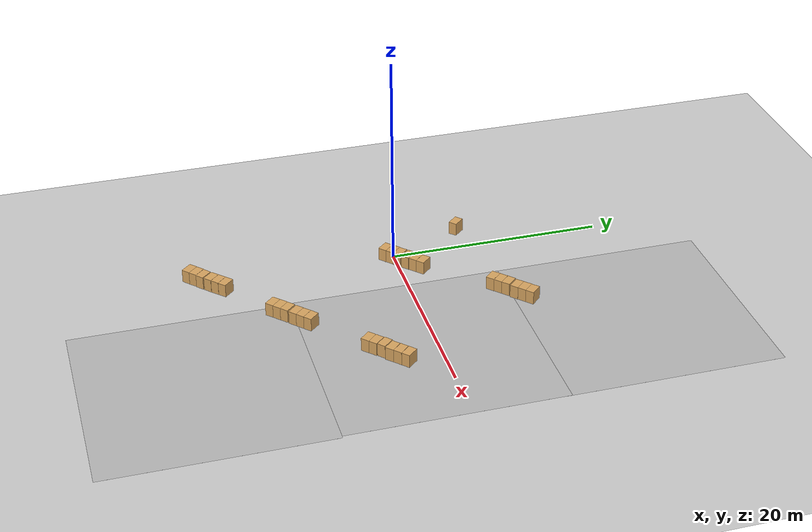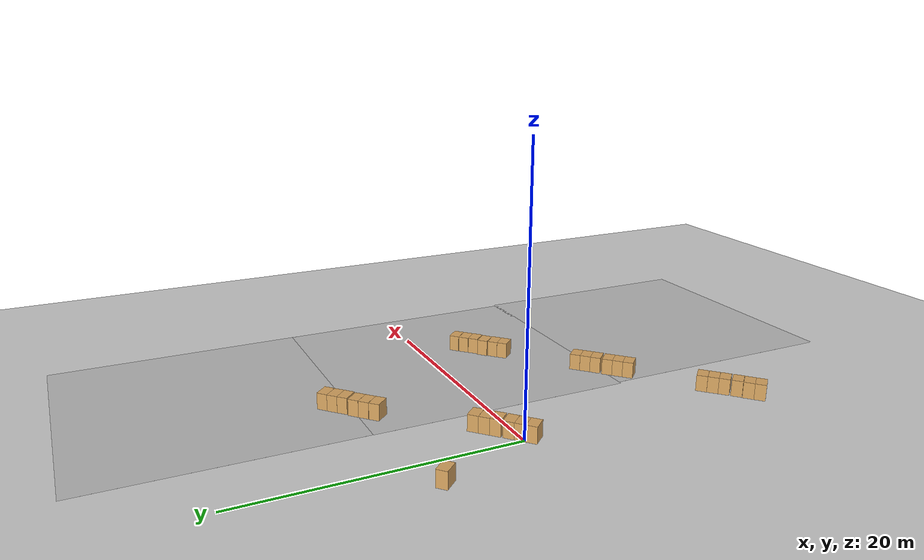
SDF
<sdf version="1.6">
 <world name="default">
  <model name="ground_plane">
   <static>1</static>
   <link name="link">
    <collision name="collision">
     <geometry><plane><normal>0 0 1</normal><size>100 100</size></plane></geometry>
     <surface><friction><ode><mu>100</mu><mu2>50</mu2></ode></friction></surface>
    </collision>
    <visual name="visual">
     <cast_shadows>0</cast_shadows>
     <geometry><plane><normal>0 0 1</normal><size>100 100</size></plane></geometry>
     <material>
      <script><uri>file://media/materials/scripts/gazebo.material</uri><name>Gazebo/Grey</name></script>
     </material>
    </visual>
   </link>
  </model>
  <model name="Floor_room_0_clone">
   <link name="main">
    <pose>0 0 0.01 0 -0 0</pose>
    <collision name="main_Collision"><geometry><box><size>20 20 0.001</size></box></geometry></collision>
    <visual name="main_Visual">
     <geometry><box><size>20 20 0.001</size></box></geometry>
     <material>
      <script>
       <uri>model://Floor_room/materials/scripts</uri>
       <uri>model://Floor_room/materials/textures</uri>
       <name>floor_room</name>
      </script>
     </material>
    </visual>
   </link>
   <static>1</static>
   <pose>15.2569 -21.1005 0 0 -0 0</pose>
  </model>
  <model name="Floor_room_0_clone_0">
   <link name="main">
    <pose>0 0 0.01 0 -0 0</pose>
    <collision name="main_Collision"><geometry><box><size>20 20 0.001</size></box></geometry></collision>
    <visual name="main_Visual">
     <geometry><box><size>20 20 0.001</size></box></geometry>
     <material>
      <script>
       <uri>model://Floor_room/materials/scripts</uri>
       <uri>model://Floor_room/materials/textures</uri>
       <name>floor_room</name>
      </script>
     </material>
    </visual>
   </link>
   <static>1</static>
   <pose>15.0288 -1.3267 0 0 -0 0</pose>
  </model>
  <model name="Floor_room_0_clone_1">
   <link name="main">
    <pose>0 0 0.01 0 -0 0</pose>
    <collision name="main_Collision"><geometry><box><size>20 20 0.001</size></box></geometry></collision>
    <visual name="main_Visual">
     <geometry><box><size>20 20 0.001</size></box></geometry>
     <material>
      <script>
       <uri>model://Floor_room/materials/scripts</uri>
       <uri>model://Floor_room/materials/textures</uri>
       <name>floor_room</name>
      </script>
     </material>
    </visual>
   </link>
   <static>1</static>
   <pose>15.0504 18.1386 0 0 -0 0</pose>
  </model>
  <model name="Big box 4_clone_1_clone_clone_3_clone_clone_1">
   <pose>9.15129 -9.98772 0.63539 -0.000981 -0.000832 -0.826064</pose>
   <static>0</static>
   <link name="link">
    <inertial>
     <mass>40</mass>
     <inertia><ixx>1</ixx><ixy>0</ixy><ixz>0</ixz><iyy>1</iyy><iyz>0</iyz><izz>1</izz></inertia>
    </inertial>
    <collision name="collision">
     <geometry><box><size>1.2 0.8 1.25</size></box></geometry>
     <surface><contact><ode><max_vel>0.1</max_vel><min_depth>0.001</min_depth></ode></contact></surface>
    </collision>
    <visual name="visual">
     <geometry><box><size>1.20 0.80 1.25</size></box></geometry>
     <material>
      <ambient>0.72 0.55 0.32 1</ambient>
      <diffuse>0.85 0.65 0.38 1</diffuse>
      <specular>0.1 0.1 0.1 1</specular>
     </material>
    </visual>
   </link>
  </model>
  <model name="Big box 4_clone_1_clone_clone_3_clone_clone_1_clone">
   <pose>7.25854 -11.6862 0.635464 -2.7e-05 -1.5e-05 -0.815496</pose>
   <static>0</static>
   <link name="link">
    <inertial>
     <mass>40</mass>
     <inertia><ixx>1</ixx><ixy>0</ixy><ixz>0</ixz><iyy>1</iyy><iyz>0</iyz><izz>1</izz></inertia>
    </inertial>
    <collision name="collision">
     <geometry><box><size>1.2 0.8 1.25</size></box></geometry>
     <surface><contact><ode><max_vel>0.1</max_vel><min_depth>0.001</min_depth></ode></contact></surface>
    </collision>
    <visual name="visual">
     <geometry><box><size>1.20 0.80 1.25</size></box></geometry>
     <material>
      <ambient>0.72 0.55 0.32 1</ambient>
      <diffuse>0.85 0.65 0.38 1</diffuse>
      <specular>0.1 0.1 0.1 1</specular>
     </material>
    </visual>
   </link>
  </model>
  <model name="Big box 4_clone_1_clone_clone_3_clone_clone_1_clone_0">
   <pose>6.67276 -12.2304 0.635223 0.000765 -5.1e-05 -0.815316</pose>
   <static>0</static>
   <link name="link">
    <inertial>
     <mass>40</mass>
     <inertia><ixx>1</ixx><ixy>0</ixy><ixz>0</ixz><iyy>1</iyy><iyz>0</iyz><izz>1</izz></inertia>
    </inertial>
    <collision name="collision">
     <geometry><box><size>1.2 0.8 1.25</size></box></geometry>
     <surface><contact><ode><max_vel>0.1</max_vel><min_depth>0.001</min_depth></ode></contact></surface>
    </collision>
    <visual name="visual">
     <geometry><box><size>1.20 0.80 1.25</size></box></geometry>
     <material>
      <ambient>0.72 0.55 0.32 1</ambient>
      <diffuse>0.85 0.65 0.38 1</diffuse>
      <specular>0.1 0.1 0.1 1</specular>
     </material>
    </visual>
   </link>
  </model>
  <model name="Big box 4_clone_1_clone_clone_3_clone_clone_1_clone_0_clone">
   <pose>6.08846 -12.7777 0.63538 -0.00014 -0.000237 -0.815193</pose>
   <static>0</static>
   <link name="link">
    <inertial>
     <mass>40</mass>
     <inertia><ixx>1</ixx><ixy>0</ixy><ixz>0</ixz><iyy>1</iyy><iyz>0</iyz><izz>1</izz></inertia>
    </inertial>
    <collision name="collision">
     <geometry><box><size>1.2 0.8 1.25</size></box></geometry>
     <surface><contact><ode><max_vel>0.1</max_vel><min_depth>0.001</min_depth></ode></contact></surface>
    </collision>
    <visual name="visual">
     <geometry><box><size>1.20 0.80 1.25</size></box></geometry>
     <material>
      <ambient>0.72 0.55 0.32 1</ambient>
      <diffuse>0.85 0.65 0.38 1</diffuse>
      <specular>0.1 0.1 0.1 1</specular>
     </material>
    </visual>
   </link>
  </model>
  <model name="Big box 4_clone_1_clone_clone_3_clone_clone_1_clone_0_clone_1">
   <pose>8.56172 -10.531 0.635082 -0.000196 -0.000827 -0.822312</pose>
   <static>0</static>
   <link name="link">
    <inertial>
     <mass>40</mass>
     <inertia><ixx>1</ixx><ixy>0</ixy><ixz>0</ixz><iyy>1</iyy><iyz>0</iyz><izz>1</izz></inertia>
    </inertial>
    <collision name="collision">
     <geometry><box><size>1.2 0.8 1.25</size></box></geometry>
     <surface><contact><ode><max_vel>0.1</max_vel><min_depth>0.001</min_depth></ode></contact></surface>
    </collision>
    <visual name="visual">
     <geometry><box><size>1.20 0.80 1.25</size></box></geometry>
     <material>
      <ambient>0.72 0.55 0.32 1</ambient>
      <diffuse>0.85 0.65 0.38 1</diffuse>
      <specular>0.1 0.1 0.1 1</specular>
     </material>
    </visual>
   </link>
  </model>
  <model name="Big box 4_clone_1_clone_clone_3_clone_clone_1_clone_0_clone_0">
   <pose>7.97165 -11.0705 0.635079 -0.000198 -0.000834 -0.823147</pose>
   <static>0</static>
   <link name="link">
    <inertial>
     <mass>40</mass>
     <inertia><ixx>1</ixx><ixy>0</ixy><ixz>0</ixz><iyy>1</iyy><iyz>0</iyz><izz>1</izz></inertia>
    </inertial>
    <collision name="collision">
     <geometry><box><size>1.2 0.8 1.25</size></box></geometry>
     <surface><contact><ode><max_vel>0.1</max_vel><min_depth>0.001</min_depth></ode></contact></surface>
    </collision>
    <visual name="visual">
     <geometry><box><size>1.20 0.80 1.25</size></box></geometry>
     <material>
      <ambient>0.72 0.55 0.32 1</ambient>
      <diffuse>0.85 0.65 0.38 1</diffuse>
      <specular>0.1 0.1 0.1 1</specular>
     </material>
    </visual>
   </link>
  </model>
  <model name="Big box 4_clone_1_clone_clone_3_clone_clone_1_clone_0_clone_clone_3_clone_6">
   <pose>0.520862 -17.3367 0.635477 0.000446 0.000301 -0.825937</pose>
   <static>0</static>
   <link name="link">
    <inertial>
     <mass>40</mass>
     <inertia><ixx>1</ixx><ixy>0</ixy><ixz>0</ixz><iyy>1</iyy><iyz>0</iyz><izz>1</izz></inertia>
    </inertial>
    <collision name="collision">
     <geometry><box><size>1.2 0.8 1.25</size></box></geometry>
     <surface><contact><ode><max_vel>0.1</max_vel><min_depth>0.001</min_depth></ode></contact></surface>
    </collision>
    <visual name="visual">
     <geometry><box><size>1.20 0.80 1.25</size></box></geometry>
     <material>
      <ambient>0.72 0.55 0.32 1</ambient>
      <diffuse>0.85 0.65 0.38 1</diffuse>
      <specular>0.1 0.1 0.1 1</specular>
     </material>
    </visual>
   </link>
  </model>
  <model name="Big box 4_clone_1_clone_clone_3_clone_clone_1_clone_0_clone_clone_3_clone_8">
   <pose>1.10652 -16.7834 0.634985 7e-06 -0.000805 -0.816273</pose>
   <static>0</static>
   <link name="link">
    <inertial>
     <mass>40</mass>
     <inertia><ixx>1</ixx><ixy>0</ixy><ixz>0</ixz><iyy>1</iyy><iyz>0</iyz><izz>1</izz></inertia>
    </inertial>
    <collision name="collision">
     <geometry><box><size>1.2 0.8 1.25</size></box></geometry>
     <surface><contact><ode><max_vel>0.1</max_vel><min_depth>0.001</min_depth></ode></contact></surface>
    </collision>
    <visual name="visual">
     <geometry><box><size>1.20 0.80 1.25</size></box></geometry>
     <material>
      <ambient>0.72 0.55 0.32 1</ambient>
      <diffuse>0.85 0.65 0.38 1</diffuse>
      <specular>0.1 0.1 0.1 1</specular>
     </material>
    </visual>
   </link>
  </model>
  <model name="Big box 4_clone_1_clone_clone_3_clone_clone_1_clone_0_clone_clone_3_clone_7">
   <pose>1.69106 -16.2278 0.634995 1.7e-05 -0.000815 -0.815976</pose>
   <static>0</static>
   <link name="link">
    <inertial>
     <mass>40</mass>
     <inertia><ixx>1</ixx><ixy>0</ixy><ixz>0</ixz><iyy>1</iyy><iyz>0</iyz><izz>1</izz></inertia>
    </inertial>
    <collision name="collision">
     <geometry><box><size>1.2 0.8 1.25</size></box></geometry>
     <surface><contact><ode><max_vel>0.1</max_vel><min_depth>0.001</min_depth></ode></contact></surface>
    </collision>
    <visual name="visual">
     <geometry><box><size>1.20 0.80 1.25</size></box></geometry>
     <material>
      <ambient>0.72 0.55 0.32 1</ambient>
      <diffuse>0.85 0.65 0.38 1</diffuse>
      <specular>0.1 0.1 0.1 1</specular>
     </material>
    </visual>
   </link>
  </model>
  <model name="Big box 4_clone_1_clone_clone_3_clone_clone_1_clone_0_clone_clone_3_clone_6_clone">
   <pose>-1.36441 -19.0103 0.635259 -0.000725 -0.000781 -0.820196</pose>
   <static>0</static>
   <link name="link">
    <inertial>
     <mass>40</mass>
     <inertia><ixx>1</ixx><ixy>0</ixy><ixz>0</ixz><iyy>1</iyy><iyz>0</iyz><izz>1</izz></inertia>
    </inertial>
    <collision name="collision">
     <geometry><box><size>1.2 0.8 1.25</size></box></geometry>
     <surface><contact><ode><max_vel>0.1</max_vel><min_depth>0.001</min_depth></ode></contact></surface>
    </collision>
    <visual name="visual">
     <geometry><box><size>1.20 0.80 1.25</size></box></geometry>
     <material>
      <ambient>0.72 0.55 0.32 1</ambient>
      <diffuse>0.85 0.65 0.38 1</diffuse>
      <specular>0.1 0.1 0.1 1</specular>
     </material>
    </visual>
   </link>
  </model>
  <model name="Big box 4_clone_1_clone_clone_3_clone_clone_1_clone_0_clone_clone_3_clone_6_clone_0">
   <pose>-0.138119 -17.9496 0.635002 9e-06 -0.000825 -0.823667</pose>
   <static>0</static>
   <link name="link">
    <inertial>
     <mass>40</mass>
     <inertia><ixx>1</ixx><ixy>0</ixy><ixz>0</ixz><iyy>1</iyy><iyz>0</iyz><izz>1</izz></inertia>
    </inertial>
    <collision name="collision">
     <geometry><box><size>1.2 0.8 1.25</size></box></geometry>
     <surface><contact><ode><max_vel>0.1</max_vel><min_depth>0.001</min_depth></ode></contact></surface>
    </collision>
    <visual name="visual">
     <geometry><box><size>1.20 0.80 1.25</size></box></geometry>
     <material>
      <ambient>0.72 0.55 0.32 1</ambient>
      <diffuse>0.85 0.65 0.38 1</diffuse>
      <specular>0.1 0.1 0.1 1</specular>
     </material>
    </visual>
   </link>
  </model>
  <model name="Big box 4_clone_1_clone_clone_3_clone_clone_1_clone_0_clone_clone_3_clone_6_clone_1">
   <pose>-0.768553 -18.4756 0.634986 7e-06 -0.000808 -0.821489</pose>
   <static>0</static>
   <link name="link">
    <inertial>
     <mass>40</mass>
     <inertia><ixx>1</ixx><ixy>0</ixy><ixz>0</ixz><iyy>1</iyy><iyz>0</iyz><izz>1</izz></inertia>
    </inertial>
    <collision name="collision">
     <geometry><box><size>1.2 0.8 1.25</size></box></geometry>
     <surface><contact><ode><max_vel>0.1</max_vel><min_depth>0.001</min_depth></ode></contact></surface>
    </collision>
    <visual name="visual">
     <geometry><box><size>1.20 0.80 1.25</size></box></geometry>
     <material>
      <ambient>0.72 0.55 0.32 1</ambient>
      <diffuse>0.85 0.65 0.38 1</diffuse>
      <specular>0.1 0.1 0.1 1</specular>
     </material>
    </visual>
   </link>
  </model>
  <model name="Big box 4_clone_1_clone_clone_3_clone_clone_1_clone_0_clone_0_clone">
   <pose>13.7473 -5.95119 0.635493 -9.3e-05 -7.2e-05 -0.819926</pose>
   <static>0</static>
   <link name="link">
    <inertial>
     <mass>40</mass>
     <inertia><ixx>1</ixx><ixy>0</ixy><ixz>0</ixz><iyy>1</iyy><iyz>0</iyz><izz>1</izz></inertia>
    </inertial>
    <collision name="collision">
     <geometry><box><size>1.2 0.8 1.25</size></box></geometry>
     <surface><contact><ode><max_vel>0.1</max_vel><min_depth>0.001</min_depth></ode></contact></surface>
    </collision>
    <visual name="visual">
     <geometry><box><size>1.20 0.80 1.25</size></box></geometry>
     <material>
      <ambient>0.72 0.55 0.32 1</ambient>
      <diffuse>0.85 0.65 0.38 1</diffuse>
      <specular>0.1 0.1 0.1 1</specular>
     </material>
    </visual>
   </link>
  </model>
  <model name="Big box 4_clone_1_clone_clone_3_clone_clone_1_clone_0_clone_0_clone_0">
   <pose>14.3278 -5.4008 0.635115 -0.000299 -0.000827 -0.819794</pose>
   <static>0</static>
   <link name="link">
    <inertial>
     <mass>40</mass>
     <inertia><ixx>1</ixx><ixy>0</ixy><ixz>0</ixz><iyy>1</iyy><iyz>0</iyz><izz>1</izz></inertia>
    </inertial>
    <collision name="collision">
     <geometry><box><size>1.2 0.8 1.25</size></box></geometry>
     <surface><contact><ode><max_vel>0.1</max_vel><min_depth>0.001</min_depth></ode></contact></surface>
    </collision>
    <visual name="visual">
     <geometry><box><size>1.20 0.80 1.25</size></box></geometry>
     <material>
      <ambient>0.72 0.55 0.32 1</ambient>
      <diffuse>0.85 0.65 0.38 1</diffuse>
      <specular>0.1 0.1 0.1 1</specular>
     </material>
    </visual>
   </link>
  </model>
  <model name="Big box 4_clone_1_clone_clone_3_clone_clone_1_clone_0_clone_0_clone_1">
   <pose>14.9152 -4.7999 0.635003 -2e-06 -0.000829 -0.842655</pose>
   <static>0</static>
   <link name="link">
    <inertial>
     <mass>40</mass>
     <inertia><ixx>1</ixx><ixy>0</ixy><ixz>0</ixz><iyy>1</iyy><iyz>0</iyz><izz>1</izz></inertia>
    </inertial>
    <collision name="collision">
     <geometry><box><size>1.2 0.8 1.25</size></box></geometry>
     <surface><contact><ode><max_vel>0.1</max_vel><min_depth>0.001</min_depth></ode></contact></surface>
    </collision>
    <visual name="visual">
     <geometry><box><size>1.20 0.80 1.25</size></box></geometry>
     <material>
      <ambient>0.72 0.55 0.32 1</ambient>
      <diffuse>0.85 0.65 0.38 1</diffuse>
      <specular>0.1 0.1 0.1 1</specular>
     </material>
    </visual>
   </link>
  </model>
  <model name="Big box 4_clone_1_clone_clone_3_clone_clone_1_clone_0_clone_0_clone_2">
   <pose>15.6293 -4.27811 0.635295 0.001115 0.000417 -0.818067</pose>
   <static>0</static>
   <link name="link">
    <inertial>
     <mass>40</mass>
     <inertia><ixx>1</ixx><ixy>0</ixy><ixz>0</ixz><iyy>1</iyy><iyz>0</iyz><izz>1</izz></inertia>
    </inertial>
    <collision name="collision">
     <geometry><box><size>1.2 0.8 1.25</size></box></geometry>
     <surface><contact><ode><max_vel>0.1</max_vel><min_depth>0.001</min_depth></ode></contact></surface>
    </collision>
    <visual name="visual">
     <geometry><box><size>1.20 0.80 1.25</size></box></geometry>
     <material>
      <ambient>0.72 0.55 0.32 1</ambient>
      <diffuse>0.85 0.65 0.38 1</diffuse>
      <specular>0.1 0.1 0.1 1</specular>
     </material>
    </visual>
   </link>
  </model>
  <model name="Big box 4_clone_1_clone_clone_3_clone_clone_1_clone_0_clone_0_clone_3">
   <pose>16.8167 -3.15508 0.635 1.8e-05 -0.000821 -0.836899</pose>
   <static>0</static>
   <link name="link">
    <inertial>
     <mass>40</mass>
     <inertia><ixx>1</ixx><ixy>0</ixy><ixz>0</ixz><iyy>1</iyy><iyz>0</iyz><izz>1</izz></inertia>
    </inertial>
    <collision name="collision">
     <geometry><box><size>1.2 0.8 1.25</size></box></geometry>
     <surface><contact><ode><max_vel>0.1</max_vel><min_depth>0.001</min_depth></ode></contact></surface>
    </collision>
    <visual name="visual">
     <geometry><box><size>1.20 0.80 1.25</size></box></geometry>
     <material>
      <ambient>0.72 0.55 0.32 1</ambient>
      <diffuse>0.85 0.65 0.38 1</diffuse>
      <specular>0.1 0.1 0.1 1</specular>
     </material>
    </visual>
   </link>
  </model>
  <model name="Big box 4_clone_1_clone_clone_3_clone_clone_1_clone_0_clone_0_clone_4">
   <pose>16.2168 -3.71245 0.63499 1.4e-05 -0.000809 -0.823232</pose>
   <static>0</static>
   <link name="link">
    <inertial>
     <mass>40</mass>
     <inertia><ixx>1</ixx><ixy>0</ixy><ixz>0</ixz><iyy>1</iyy><iyz>0</iyz><izz>1</izz></inertia>
    </inertial>
    <collision name="collision">
     <geometry><box><size>1.2 0.8 1.25</size></box></geometry>
     <surface><contact><ode><max_vel>0.1</max_vel><min_depth>0.001</min_depth></ode></contact></surface>
    </collision>
    <visual name="visual">
     <geometry><box><size>1.20 0.80 1.25</size></box></geometry>
     <material>
      <ambient>0.72 0.55 0.32 1</ambient>
      <diffuse>0.85 0.65 0.38 1</diffuse>
      <specular>0.1 0.1 0.1 1</specular>
     </material>
    </visual>
   </link>
  </model>
  <model name="Big box 4_clone_1_clone_clone_3_clone_clone_1_clone_0_clone_0_clone_7">
   <pose>8.6415 8.53133 0.635481 -2.4e-05 1.6e-05 -0.828847</pose>
   <static>0</static>
   <link name="link">
    <inertial>
     <mass>40</mass>
     <inertia><ixx>1</ixx><ixy>0</ixy><ixz>0</ixz><iyy>1</iyy><iyz>0</iyz><izz>1</izz></inertia>
    </inertial>
    <collision name="collision">
     <geometry><box><size>1.2 0.8 1.25</size></box></geometry>
     <surface><contact><ode><max_vel>0.1</max_vel><min_depth>0.001</min_depth></ode></contact></surface>
    </collision>
    <visual name="visual">
     <geometry><box><size>1.20 0.80 1.25</size></box></geometry>
     <material>
      <ambient>0.72 0.55 0.32 1</ambient>
      <diffuse>0.85 0.65 0.38 1</diffuse>
      <specular>0.1 0.1 0.1 1</specular>
     </material>
    </visual>
   </link>
  </model>
  <model name="Big box 4_clone_1_clone_clone_3_clone_clone_1_clone_0_clone_0_clone_6">
   <pose>8.04996 7.98879 0.63539 -0.000537 -0.000273 -0.826577</pose>
   <static>0</static>
   <link name="link">
    <inertial>
     <mass>40</mass>
     <inertia><ixx>1</ixx><ixy>0</ixy><ixz>0</ixz><iyy>1</iyy><iyz>0</iyz><izz>1</izz></inertia>
    </inertial>
    <collision name="collision">
     <geometry><box><size>1.2 0.8 1.25</size></box></geometry>
     <surface><contact><ode><max_vel>0.1</max_vel><min_depth>0.001</min_depth></ode></contact></surface>
    </collision>
    <visual name="visual">
     <geometry><box><size>1.20 0.80 1.25</size></box></geometry>
     <material>
      <ambient>0.72 0.55 0.32 1</ambient>
      <diffuse>0.85 0.65 0.38 1</diffuse>
      <specular>0.1 0.1 0.1 1</specular>
     </material>
    </visual>
   </link>
  </model>
  <model name="Big box 4_clone_1_clone_clone_3_clone_clone_1_clone_0_clone_0_clone_5">
   <pose>7.46301 7.43366 0.63519 0.000256 -0.000525 -0.812529</pose>
   <static>0</static>
   <link name="link">
    <inertial>
     <mass>40</mass>
     <inertia><ixx>1</ixx><ixy>0</ixy><ixz>0</ixz><iyy>1</iyy><iyz>0</iyz><izz>1</izz></inertia>
    </inertial>
    <collision name="collision">
     <geometry><box><size>1.2 0.8 1.25</size></box></geometry>
     <surface><contact><ode><max_vel>0.1</max_vel><min_depth>0.001</min_depth></ode></contact></surface>
    </collision>
    <visual name="visual">
     <geometry><box><size>1.20 0.80 1.25</size></box></geometry>
     <material>
      <ambient>0.72 0.55 0.32 1</ambient>
      <diffuse>0.85 0.65 0.38 1</diffuse>
      <specular>0.1 0.1 0.1 1</specular>
     </material>
    </visual>
   </link>
  </model>
  <model name="Big box 4_clone_1_clone_clone_3_clone_clone_1_clone_0_clone_0_clone_8">
   <pose>9.36837 9.0957 0.635155 -0.000387 -0.000835 -0.823047</pose>
   <static>0</static>
   <link name="link">
    <inertial>
     <mass>40</mass>
     <inertia><ixx>1</ixx><ixy>0</ixy><ixz>0</ixz><iyy>1</iyy><iyz>0</iyz><izz>1</izz></inertia>
    </inertial>
    <collision name="collision">
     <geometry><box><size>1.2 0.8 1.25</size></box></geometry>
     <surface><contact><ode><max_vel>0.1</max_vel><min_depth>0.001</min_depth></ode></contact></surface>
    </collision>
    <visual name="visual">
     <geometry><box><size>1.20 0.80 1.25</size></box></geometry>
     <material>
      <ambient>0.72 0.55 0.32 1</ambient>
      <diffuse>0.85 0.65 0.38 1</diffuse>
      <specular>0.1 0.1 0.1 1</specular>
     </material>
    </visual>
   </link>
  </model>
  <model name="Big box 4_clone_1_clone_clone_3_clone_clone_1_clone_0_clone_0_clone_9">
   <pose>9.95031 9.64417 0.635341 -0.000865 -0.000827 -0.823145</pose>
   <static>0</static>
   <link name="link">
    <inertial>
     <mass>40</mass>
     <inertia><ixx>1</ixx><ixy>0</ixy><ixz>0</ixz><iyy>1</iyy><iyz>0</iyz><izz>1</izz></inertia>
    </inertial>
    <collision name="collision">
     <geometry><box><size>1.2 0.8 1.25</size></box></geometry>
     <surface><contact><ode><max_vel>0.1</max_vel><min_depth>0.001</min_depth></ode></contact></surface>
    </collision>
    <visual name="visual">
     <geometry><box><size>1.20 0.80 1.25</size></box></geometry>
     <material>
      <ambient>0.72 0.55 0.32 1</ambient>
      <diffuse>0.85 0.65 0.38 1</diffuse>
      <specular>0.1 0.1 0.1 1</specular>
     </material>
    </visual>
   </link>
  </model>
  <model name="Big box 4_clone_1_clone_clone_3_clone_clone_1_clone_0_clone_0_clone_10">
   <pose>10.5486 10.1813 0.634985 4e-06 -0.000801 -0.823209</pose>
   <static>0</static>
   <link name="link">
    <inertial>
     <mass>40</mass>
     <inertia><ixx>1</ixx><ixy>0</ixy><ixz>0</ixz><iyy>1</iyy><iyz>0</iyz><izz>1</izz></inertia>
    </inertial>
    <collision name="collision">
     <geometry><box><size>1.2 0.8 1.25</size></box></geometry>
     <surface><contact><ode><max_vel>0.1</max_vel><min_depth>0.001</min_depth></ode></contact></surface>
    </collision>
    <visual name="visual">
     <geometry><box><size>1.20 0.80 1.25</size></box></geometry>
     <material>
      <ambient>0.72 0.55 0.32 1</ambient>
      <diffuse>0.85 0.65 0.38 1</diffuse>
      <specular>0.1 0.1 0.1 1</specular>
     </material>
    </visual>
   </link>
  </model>
  <model name="Big box 4_clone_1_clone_clone_3_clone_clone_1_clone_0_clone_0_clone_11">
   <pose>-0.046229 -0.711085 0.635459 -0.001173 -0.000818 -0.838585</pose>
   <static>0</static>
   <link name="link">
    <inertial>
     <mass>40</mass>
     <inertia><ixx>1</ixx><ixy>0</ixy><ixz>0</ixz><iyy>1</iyy><iyz>0</iyz><izz>1</izz></inertia>
    </inertial>
    <collision name="collision">
     <geometry><box><size>1.2 0.8 1.25</size></box></geometry>
     <surface><contact><ode><max_vel>0.1</max_vel><min_depth>0.001</min_depth></ode></contact></surface>
    </collision>
    <visual name="visual">
     <geometry><box><size>1.20 0.80 1.25</size></box></geometry>
     <material>
      <ambient>0.72 0.55 0.32 1</ambient>
      <diffuse>0.85 0.65 0.38 1</diffuse>
      <specular>0.1 0.1 0.1 1</specular>
     </material>
    </visual>
   </link>
  </model>
  <model name="Big box 4_clone_1_clone_clone_3_clone_clone_1_clone_0_clone_0_clone_12">
   <pose>0.544133 -0.171349 0.635324 -0.000817 -0.000832 -0.838007</pose>
   <static>0</static>
   <link name="link">
    <inertial>
     <mass>40</mass>
     <inertia><ixx>1</ixx><ixy>0</ixy><ixz>0</ixz><iyy>1</iyy><iyz>0</iyz><izz>1</izz></inertia>
    </inertial>
    <collision name="collision">
     <geometry><box><size>1.2 0.8 1.25</size></box></geometry>
     <surface><contact><ode><max_vel>0.1</max_vel><min_depth>0.001</min_depth></ode></contact></surface>
    </collision>
    <visual name="visual">
     <geometry><box><size>1.20 0.80 1.25</size></box></geometry>
     <material>
      <ambient>0.72 0.55 0.32 1</ambient>
      <diffuse>0.85 0.65 0.38 1</diffuse>
      <specular>0.1 0.1 0.1 1</specular>
     </material>
    </visual>
   </link>
  </model>
  <model name="Big box 4_clone_1_clone_clone_3_clone_clone_1_clone_0_clone_0_clone_13">
   <pose>1.14786 0.362104 0.63528 -0.000744 -0.000806 -0.82704</pose>
   <static>0</static>
   <link name="link">
    <inertial>
     <mass>40</mass>
     <inertia><ixx>1</ixx><ixy>0</ixy><ixz>0</ixz><iyy>1</iyy><iyz>0</iyz><izz>1</izz></inertia>
    </inertial>
    <collision name="collision">
     <geometry><box><size>1.2 0.8 1.25</size></box></geometry>
     <surface><contact><ode><max_vel>0.1</max_vel><min_depth>0.001</min_depth></ode></contact></surface>
    </collision>
    <visual name="visual">
     <geometry><box><size>1.20 0.80 1.25</size></box></geometry>
     <material>
      <ambient>0.72 0.55 0.32 1</ambient>
      <diffuse>0.85 0.65 0.38 1</diffuse>
      <specular>0.1 0.1 0.1 1</specular>
     </material>
    </visual>
   </link>
  </model>
  <model name="Big box 4_clone_1_clone_clone_3_clone_clone_1_clone_0_clone_0_clone_14">
   <pose>1.82362 0.972434 0.635461 -0.000772 -0.000562 -0.835831</pose>
   <static>0</static>
   <link name="link">
    <inertial>
     <mass>40</mass>
     <inertia><ixx>1</ixx><ixy>0</ixy><ixz>0</ixz><iyy>1</iyy><iyz>0</iyz><izz>1</izz></inertia>
    </inertial>
    <collision name="collision">
     <geometry><box><size>1.2 0.8 1.25</size></box></geometry>
     <surface><contact><ode><max_vel>0.1</max_vel><min_depth>0.001</min_depth></ode></contact></surface>
    </collision>
    <visual name="visual">
     <geometry><box><size>1.20 0.80 1.25</size></box></geometry>
     <material>
      <ambient>0.72 0.55 0.32 1</ambient>
      <diffuse>0.85 0.65 0.38 1</diffuse>
      <specular>0.1 0.1 0.1 1</specular>
     </material>
    </visual>
   </link>
  </model>
  <model name="Big box 4_clone_1_clone_clone_3_clone_clone_1_clone_0_clone_0_clone_15">
   <pose>2.408 1.51849 0.635132 -0.000381 -0.0008 -0.836237</pose>
   <static>0</static>
   <link name="link">
    <inertial>
     <mass>40</mass>
     <inertia><ixx>1</ixx><ixy>0</ixy><ixz>0</ixz><iyy>1</iyy><iyz>0</iyz><izz>1</izz></inertia>
    </inertial>
    <collision name="collision">
     <geometry><box><size>1.2 0.8 1.25</size></box></geometry>
     <surface><contact><ode><max_vel>0.1</max_vel><min_depth>0.001</min_depth></ode></contact></surface>
    </collision>
    <visual name="visual">
     <geometry><box><size>1.20 0.80 1.25</size></box></geometry>
     <material>
      <ambient>0.72 0.55 0.32 1</ambient>
      <diffuse>0.85 0.65 0.38 1</diffuse>
      <specular>0.1 0.1 0.1 1</specular>
     </material>
    </visual>
   </link>
  </model>
  <model name="Big box 4_clone_1_clone_clone_3_clone_clone_1_clone_0_clone_0_clone_16">
   <pose>3.00408 2.06545 0.634985 6e-06 -0.000805 -0.823197</pose>
   <static>0</static>
   <link name="link">
    <inertial>
     <mass>40</mass>
     <inertia><ixx>1</ixx><ixy>0</ixy><ixz>0</ixz><iyy>1</iyy><iyz>0</iyz><izz>1</izz></inertia>
    </inertial>
    <collision name="collision">
     <geometry><box><size>1.2 0.8 1.25</size></box></geometry>
     <surface><contact><ode><max_vel>0.1</max_vel><min_depth>0.001</min_depth></ode></contact></surface>
    </collision>
    <visual name="visual">
     <geometry><box><size>1.20 0.80 1.25</size></box></geometry>
     <material>
      <ambient>0.72 0.55 0.32 1</ambient>
      <diffuse>0.85 0.65 0.38 1</diffuse>
      <specular>0.1 0.1 0.1 1</specular>
     </material>
    </visual>
   </link>
  </model>
  <model name="Big box 4_clone_1_clone_clone_3_clone_clone_1_clone_0_clone_0_clone_17_clone_6">
   <pose>-2.75141 6.9897 0.635003 -1e-06 -0.000829 -0.83951</pose>
   <static>0</static>
   <link name="link">
    <inertial>
     <mass>40</mass>
     <inertia><ixx>1</ixx><ixy>0</ixy><ixz>0</ixz><iyy>1</iyy><iyz>0</iyz><izz>1</izz></inertia>
    </inertial>
    <collision name="collision">
     <geometry><box><size>1.2 0.8 1.25</size></box></geometry>
     <surface><contact><ode><max_vel>0.1</max_vel><min_depth>0.001</min_depth></ode></contact></surface>
    </collision>
    <visual name="visual">
     <geometry><box><size>1.20 0.80 1.25</size></box></geometry>
     <material>
      <ambient>0.72 0.55 0.32 1</ambient>
      <diffuse>0.85 0.65 0.38 1</diffuse>
      <specular>0.1 0.1 0.1 1</specular>
     </material>
    </visual>
   </link>
  </model>
 </world>
</sdf>
